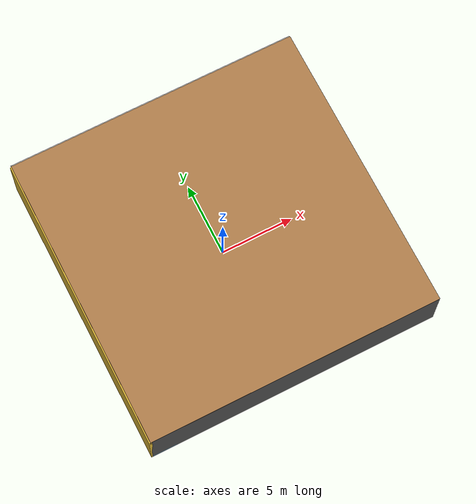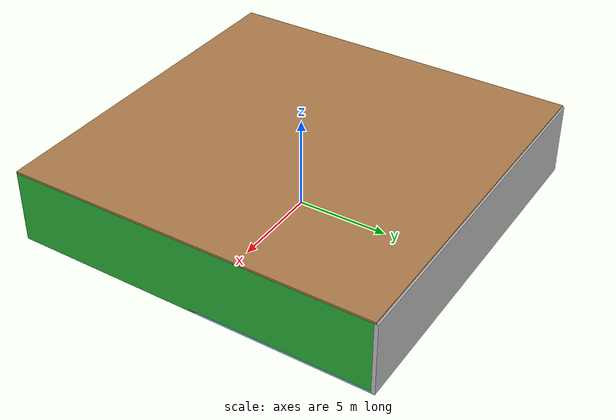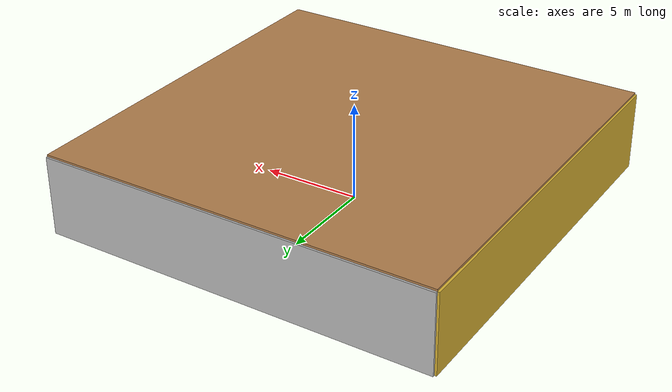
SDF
<sdf version="1.4">
 <world name="default">
  <physics type="ode">
   <max_step_size>0.001</max_step_size>
   <real_time_factor>1</real_time_factor>
   <real_time_update_rate>1000</real_time_update_rate>
   <gravity>0 0 -9.8</gravity>
  </physics>
  <scene><ambient>0.4 0.4 0.4 1</ambient><background>0.7 0.7 0.7 1</background><shadows>1</shadows></scene>
  <model name="Surrounding">
   <static>1</static>
   <link name="Ceiling">
    <collision name="Ceiling_Collision"><geometry><box><size>20 20 0.1</size></box></geometry></collision>
    <visual name="Ceiling_Visual">
     <geometry><box><size>20 20 0.1</size></box></geometry>
     <material>
      <script><uri>file://media/materials/scripts/gazebo.material</uri><name>Gazebo/WoodFloor</name></script>
     </material>
    </visual>
    <pose>0 0 4.05 0 0 0</pose>
   </link>
   <link name="Wall_South">
    <collision name="Wall_South_Collision">
     <geometry><box><size>20 0 4</size></box></geometry>
     <pose>0 0 2 0 -0 0</pose>
    </collision>
    <visual name="Wall_South_Visual">
     <pose>0 0 2 0 -0 0</pose>
     <geometry><box><size>20 0 4</size></box></geometry>
     <material>
      <script><uri>file://media/materials/scripts/gazebo.material</uri><name>Gazebo/Road</name></script>
     </material>
    </visual>
    <velocity_decay><linear>0</linear><angular>0</angular></velocity_decay>
    <pose>0 -10 0 0 -0 0</pose>
   </link>
   <link name="Wall_East">
    <collision name="Wall_21_Collision">
     <geometry><box><size>20 0 4</size></box></geometry>
     <pose>0 0 2 0 -0 0</pose>
    </collision>
    <visual name="Wall_21_Visual">
     <pose>0 0 2 0 -0 0</pose>
     <geometry><box><size>20 0 4</size></box></geometry>
     <material>
      <script><uri>file://media/materials/scripts/gazebo.material</uri><name>Gazebo/GreenGlow</name></script>
     </material>
    </visual>
    <velocity_decay><linear>0</linear><angular>0</angular></velocity_decay>
    <pose>10 0 0 0 -0 1.5708</pose>
   </link>
   <link name="Wall_North">
    <collision name="Wall_22_Collision">
     <geometry><box><size>20 0.2 4</size></box></geometry>
     <pose>0 0 2 0 -0 0</pose>
    </collision>
    <visual name="Wall_22_Visual">
     <pose>0 0 2 0 -0 0</pose>
     <geometry><box><size>20 0.2 4</size></box></geometry>
     <material>
      <script><uri>file://media/materials/scripts/gazebo.material</uri><name>Gazebo/Pioneer2Body</name></script>
     </material>
    </visual>
    <velocity_decay><linear>0</linear><angular>0</angular></velocity_decay>
    <pose>0 10 0 0 -0 0</pose>
   </link>
   <link name="Wall_West">
    <collision name="Wall_23_Collision">
     <geometry><box><size>20 0.2 4</size></box></geometry>
     <pose>0 0 2 0 -0 0</pose>
    </collision>
    <visual name="Wall_23_Visual">
     <pose>0 0 2 0 -0 0</pose>
     <geometry><box><size>20 0.2 4</size></box></geometry>
     <material>
      <script><uri>file://media/materials/scripts/gazebo.material</uri><name>Gazebo/Gold</name></script>
     </material>
    </visual>
    <velocity_decay><linear>0</linear><angular>0</angular></velocity_decay>
    <pose>-10 0 0 0 0 -1.5708</pose>
   </link>
   <link name="Ground_link">
    <collision name="collision">
     <pose>0 0 .05 0 -0 0</pose>
     <geometry><box><size>20 20 0.1</size></box></geometry>
    </collision>
    <visual name="visual">
     <pose>0 0 .05 0 -0 0</pose>
     <geometry><box><size>20 20 0.1</size></box></geometry>
     <material>
      <script><uri>file://media/materials/scripts/gazebo.material</uri><name>Gazebo/SkyBlue</name></script>
     </material>
    </visual>
   </link>
   <static>1</static>
  </model>
  <spherical_coordinates>
   <surface_model>EARTH_WGS84</surface_model>
   <latitude_deg>0</latitude_deg>
   <longitude_deg>0</longitude_deg>
   <elevation>0</elevation>
   <heading_deg>0</heading_deg>
  </spherical_coordinates>
  <light name="lightball_0" type="diffuse">
   <diffuse>0.8 0.8 0.8 1</diffuse>
   <specular>0.2 0.2 0.2 1</specular>
   <attenuation>
    <range>100</range>
    <constant>0.7</constant>
    <linear>0.01</linear>
    <quadratic>0.001</quadratic>
   </attenuation>
   <direction>-0.5 0.1 -0.9</direction>
   <pose>-2.43292870281 3.21544331958 2.4850176034 0 0 0</pose>
  </light>
  <light name="lightball_1" type="diffuse">
   <diffuse>0.8 0.8 0.8 1</diffuse>
   <specular>0.2 0.2 0.2 1</specular>
   <attenuation>
    <range>100</range>
    <constant>0.7</constant>
    <linear>0.01</linear>
    <quadratic>0.001</quadratic>
   </attenuation>
   <direction>-0.5 0.1 -0.9</direction>
   <pose>7.52193388875 5.64490030013 2.18494733173 0 0 0</pose>
  </light>
  <light name="lightball_2" type="diffuse">
   <diffuse>0.8 0.8 0.8 1</diffuse>
   <specular>0.2 0.2 0.2 1</specular>
   <attenuation>
    <range>100</range>
    <constant>0.7</constant>
    <linear>0.01</linear>
    <quadratic>0.001</quadratic>
   </attenuation>
   <direction>-0.5 0.1 -0.9</direction>
   <pose>3.78233441247 5.6072382123 1.70711214066 0 0 0</pose>
  </light>
  <light name="lightball_3" type="diffuse">
   <diffuse>0.8 0.8 0.8 1</diffuse>
   <specular>0.2 0.2 0.2 1</specular>
   <attenuation>
    <range>100</range>
    <constant>0.7</constant>
    <linear>0.01</linear>
    <quadratic>0.001</quadratic>
   </attenuation>
   <direction>-0.5 0.1 -0.9</direction>
   <pose>1.30440865116 9.3337580707 1.26588252102 0 0 0</pose>
  </light>
  <light name="lightball_4" type="diffuse">
   <diffuse>0.8 0.8 0.8 1</diffuse>
   <specular>0.2 0.2 0.2 1</specular>
   <attenuation>
    <range>100</range>
    <constant>0.7</constant>
    <linear>0.01</linear>
    <quadratic>0.001</quadratic>
   </attenuation>
   <direction>-0.5 0.1 -0.9</direction>
   <pose>0.220011695615 6.0917953591 1.35995652211 0 0 0</pose>
  </light>
  <include>
   <uri>model://robocup_3Dsim_goal</uri>
   <pose>-5.13222414025 -8.36156939827 0 0 0 0.454587242945</pose>
  </include>
  <include>
   <uri>model://textured_shapes</uri>
   <pose>3.47368326884 0.662366439673 0 0 0 0.571946702864</pose>
  </include>
  <include>
   <uri>model://construction_cone</uri>
   <pose>7.34317827671 -0.329007999566 0 0 0 0.391007333735</pose>
  </include>
 </world>
</sdf>

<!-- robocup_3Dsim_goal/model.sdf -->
<sdf version="1.5">
  <model name="robocup_3d_goal">
    <static>true</static>
    <link name="left_post">
      <pose>0 1.05 0.45 0 0 0</pose>
      <collision name="collision">
        <geometry>
          <cylinder>
            <radius>0.05</radius>
            <length>0.9</length>
          </cylinder>
        </geometry>
      </collision>
      <visual name="visual">
        <geometry>
          <cylinder>
            <radius>0.05</radius>
            <length>0.9</length>
          </cylinder>
        </geometry>
        <material>
          <script>
            <uri>file://media/materials/scripts/gazebo.material</uri>
            <name>Gazebo/ZincYellow</name>
          </script>
        </material>
      </visual>
    </link>
    <link name="left_support_horiz_lower">
      <pose>0.30 1.05 0.01 0 0 0</pose>
      <collision name="collision">
        <geometry>
          <box>
            <size>0.50 0.02 0.02</size>
          </box>
        </geometry>
      </collision>
      <visual name="visual">
        <geometry>
          <box>
            <size>0.50 0.02 0.02</size>
          </box>
        </geometry>
        <material>
          <script>
            <uri>file://media/materials/scripts/gazebo.material</uri>
            <name>Gazebo/White</name>
          </script>
        </material>
      </visual>
    </link>
    <link name="left_support_horiz_upper">
      <pose>0.30 1.05 0.79 0 0 0</pose>
      <collision name="collision">
        <geometry>
          <box>
            <size>0.50 0.02 0.02</size>
          </box>
        </geometry>
      </collision>
      <visual name="visual">
        <geometry>
          <box>
            <size>0.50 0.02 0.02</size>
          </box>
        </geometry>
        <material>
          <script>
            <uri>file://media/materials/scripts/gazebo.material</uri>
            <name>Gazebo/White</name>
          </script>
        </material>
      </visual>
    </link>
    <link name="left_support_vertical">
      <pose>0.56 1.05 0.4 0 1.5708 0</pose>
      <collision name="collision">
        <geometry>
          <box>
            <size>0.80 0.02 0.02</size>
          </box>
        </geometry>
      </collision>
      <visual name="visual">
        <geometry>
          <box>
            <size>0.80 0.02 0.02</size>
          </box>
        </geometry>
        <material>
          <script>
            <uri>file://media/materials/scripts/gazebo.material</uri>
            <name>Gazebo/White</name>
          </script>
        </material>
      </visual>
    </link>
    <link name="right_support_horiz_lower">
      <pose>0.30 -1.05 0.01 0 0 0</pose>
      <collision name="collision">
        <geometry>
          <box>
            <size>0.50 0.02 0.02</size>
          </box>
        </geometry>
      </collision>
      <visual name="visual">
        <geometry>
          <box>
            <size>0.50 0.02 0.02</size>
          </box>
        </geometry>
        <material>
          <script>
            <uri>file://media/materials/scripts/gazebo.material</uri>
            <name>Gazebo/White</name>
          </script>
        </material>
      </visual>
    </link>
    <link name="right_support_horiz_upper">
      <pose>0.30 -1.05 0.79 0 0 0</pose>
      <collision name="collision">
        <geometry>
          <box>
            <size>0.50 0.02 0.02</size>
          </box>
        </geometry>
      </collision>
      <visual name="visual">
        <geometry>
          <box>
            <size>0.50 0.02 0.02</size>
          </box>
        </geometry>
        <material>
          <script>
            <uri>file://media/materials/scripts/gazebo.material</uri>
            <name>Gazebo/White</name>
          </script>
        </material>
      </visual>
    </link>
    <link name="right_support_vertical">
      <pose>0.56 -1.05 0.4 0 1.5708 0</pose>
      <collision name="collision">
        <geometry>
          <box>
            <size>0.80 0.02 0.02</size>
          </box>
        </geometry>
      </collision>
      <visual name="visual">
        <geometry>
          <box>
            <size>0.80 0.02 0.02</size>
          </box>
        </geometry>
        <material>
          <script>
            <uri>file://media/materials/scripts/gazebo.material</uri>
            <name>Gazebo/White</name>
          </script>
        </material>
      </visual>
    </link>
    <link name="center_support_horiz_lower">
      <pose>0.56 0 0.01 0 1.5708 0</pose>
      <collision name="collision">
        <geometry>
          <box>
            <size>0.02 2.08 0.02</size>
          </box>
        </geometry>
      </collision>
      <visual name="visual">
        <geometry>
          <box>
            <size>0.02 2.08 0.02</size>
          </box>
        </geometry>
        <material>
          <script>
            <uri>file://media/materials/scripts/gazebo.material</uri>
            <name>Gazebo/White</name>
          </script>
        </material>
      </visual>
    </link>
    <link name="center_support_horiz_upper">
      <pose>0.56 0 0.79 0 1.5708 0</pose>
      <collision name="collision">
        <geometry>
          <box>
            <size>0.02 2.08 0.02</size>
          </box>
        </geometry>
      </collision>
      <visual name="visual">
        <geometry>
          <box>
            <size>0.02 2.08 0.02</size>
          </box>
        </geometry>
        <material>
          <script>
            <uri>file://media/materials/scripts/gazebo.material</uri>
            <name>Gazebo/White</name>
          </script>
        </material>
      </visual>
    </link>
    <link name="right_post">
      <pose>0 -1.05 0.45 0 0 0</pose>
      <collision name="collision">
        <geometry>
          <cylinder>
            <radius>0.05</radius>
            <length>0.9</length>
          </cylinder>
        </geometry>
      </collision>
      <visual name="visual">
        <geometry>
          <cylinder>
            <radius>0.05</radius>
            <length>0.9</length>
          </cylinder>
        </geometry>
        <material>
          <script>
            <uri>file://media/materials/scripts/gazebo.material</uri>
            <name>Gazebo/ZincYellow</name>
          </script>
        </material>
      </visual>
    </link>
    <link name="crossbar">
      <pose>0 0 0.85 1.57 1.57 0</pose>
      <collision name="collision">
        <geometry>
          <cylinder>
            <radius>0.05</radius>
            <length>2.0</length>
          </cylinder>
        </geometry>
      </collision>
      <visual name="visual">
        <geometry>
          <cylinder>
            <radius>0.05</radius>
            <length>2.0</length>
          </cylinder>
        </geometry>
        <material>
          <script>
            <uri>file://media/materials/scripts/gazebo.material</uri>
            <name>Gazebo/ZincYellow</name>
          </script>
        </material>
      </visual>
    </link>
    <link name="center_net">
      <pose>0.56 0 0.40 0 0 0</pose>
      <collision name="collision">
        <geometry>
          <box>
            <size>0.01 2.1 0.80</size>
          </box>
        </geometry>
      </collision>
      <visual name="visual">
        <geometry>
          <box>
            <size>0.01 2.1 0.80</size>
          </box>
        </geometry>
        <material>
          <script>
            <uri>model://../model_source/models/robocup09_spl_field/materials/scripts/</uri>
            <uri>model://../model_source/models/robocup09_spl_field/materials/textures/</uri>
            <name>RoboCup/Net</name>
          </script>
        </material>
      </visual>
    </link>
    <link name="left_net">
      <pose>0.30 1.05 0.40 0 0 0</pose>
      <collision name="collision">
        <geometry>
          <box>
            <size>0.50 0.01 0.76</size>
          </box>
        </geometry>
      </collision>
      <visual name="visual">
        <geometry>
          <box>
            <size>0.50 0.01 0.76</size>
          </box>
        </geometry>
        <material>
          <script>
            <uri>model://../model_source/models/robocup09_spl_field/materials/scripts/</uri>
            <uri>model://../model_source/models/robocup09_spl_field/materials/textures/</uri>
            <name>RoboCup/Net</name>
          </script>
        </material>
      </visual>
    </link>
    <link name="right_net">
      <pose>0.30 -1.05 0.40 0 0 0</pose>
      <collision name="collision">
        <geometry>
          <box>
            <size>0.50 0.01 0.76</size>
          </box>
        </geometry>
      </collision>
      <visual name="visual">
        <geometry>
          <box>
            <size>0.50 0.01 0.76</size>
          </box>
        </geometry>
        <material>
          <script>
            <uri>model://../model_source/models/robocup09_spl_field/materials/scripts/</uri>
            <uri>model://../model_source/models/robocup09_spl_field/materials/textures/</uri>
            <name>RoboCup/Net</name>
          </script>
        </material>
      </visual>
    </link>
  </model>
</sdf>

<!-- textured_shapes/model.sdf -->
<sdf version="1.6">
  <model name="textured_shapes">
    <pose>0 0 0.5 0 0 0</pose>
    <link name="box">
      <pose>0 -1.5 0 0 0 0</pose>
      <collision name="collision">
        <geometry>
          <box>
            <size>1 1 1</size>
          </box>
        </geometry>
      </collision>
      <visual name="visual">
        <geometry>
          <box>
            <size>1 1 1</size>
          </box>
        </geometry>
        <material>
          <script>
            <uri>model://../model_source/models/textured_shapes/materials/scripts</uri>
            <uri>model://../model_source/models/textured_shapes/materials/textures</uri>
            <name>TexturedShape/Squares</name>
          </script>
        </material>
      </visual>
    </link>
    <link name="sphere">
      <collision name="collision">
        <geometry>
          <sphere>
            <radius>0.5</radius>
          </sphere>
        </geometry>
      </collision>
      <visual name="visual">
        <geometry>
          <sphere>
            <radius>0.5</radius>
          </sphere>
        </geometry>
        <material>
          <script>
            <uri>model://../model_source/models/textured_shapes/materials/scripts</uri>
            <uri>model://../model_source/models/textured_shapes/materials/textures</uri>
            <name>TexturedShape/Squares</name>
          </script>
        </material>
      </visual>
    </link>
    <link name="cylinder">
      <pose>0 1.5 0 0 0 0</pose>
      <collision name="collision">
        <geometry>
          <cylinder>
            <radius>0.5</radius>
            <length>1</length>
          </cylinder>
        </geometry>
      </collision>
      <visual name="visual">
        <geometry>
          <cylinder>
            <radius>0.5</radius>
            <length>1</length>
          </cylinder>
        </geometry>
        <material>
          <script>
            <uri>model://../model_source/models/textured_shapes/materials/scripts</uri>
            <uri>model://../model_source/models/textured_shapes/materials/textures</uri>
            <name>TexturedShape/Squares</name>
          </script>
        </material>
      </visual>
    </link>
  </model>
</sdf>

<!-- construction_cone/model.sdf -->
<sdf version="1.5">
  <model name="Construction Cone">
    <link name="link">
      <collision name="collision">
        <geometry>
          <mesh>
            <scale>10 10 10</scale>
            <uri>file://isr-testbed/construction_cone/meshes/construction_cone.dae</uri>
          </mesh>
        </geometry>
      </collision>
      <visual name="visual">
        <geometry>
          <mesh>
            <scale>10 10 10</scale>
            <uri>file://isr-testbed/construction_cone/meshes/construction_cone.dae</uri>
          </mesh>
        </geometry>
      </visual>
    </link>
  </model>
</sdf>
